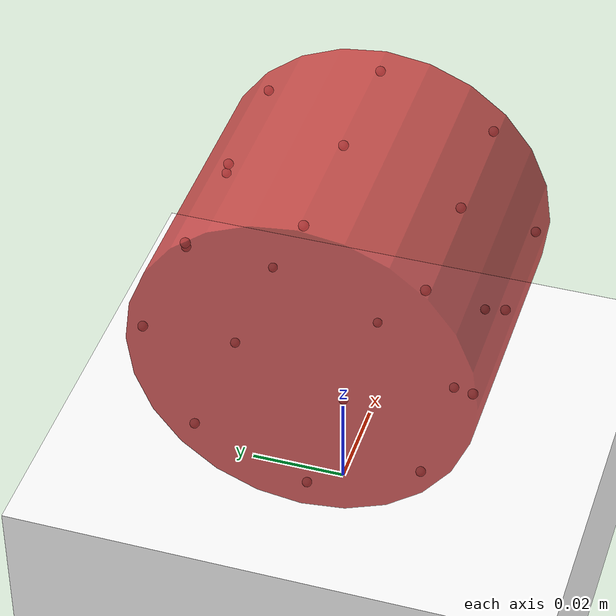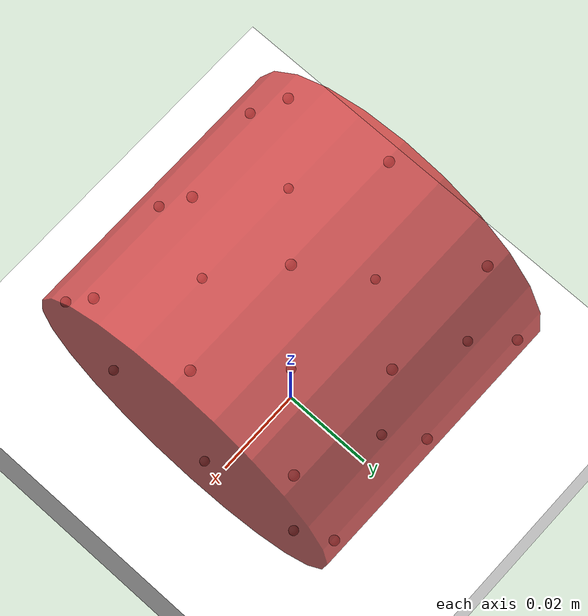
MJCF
<mujoco model="zippy scene">
  <include file="test_magnet_floor_env.xml" />

  <statistic center="0 0 0.2" extent="0.6" />

  <visual>
    <headlight diffuse="0.6 0.6 0.6" ambient="0.3 0.3 0.3" specular="0 0 0" />
    <rgba haze="0.15 0.25 0.35 1" />
    <global azimuth="160" elevation="-20" />
  </visual>

  <asset>
    <texture type="skybox" builtin="gradient" rgb1="0.3 0.5 0.7" rgb2="0 0 0" width="512"
      height="3072" />
    <texture type="2d" name="groundplane" builtin="checker" mark="edge" rgb1="0.2 0.3 0.4"
      rgb2="0.1 0.2 0.3"
      markrgb="0.8 0.8 0.8" width="300" height="300" />
    <material name="groundplane" texture="groundplane" texuniform="true" texrepeat="5 5"
      reflectance="0.2" />
  </asset>

  <worldbody>
    <light pos="0 0 1.5" dir="0 0 -1" directional="true" />
    <geom name="floor" size="0 0 0.001" type="plane" material="groundplane" />
  </worldbody>
</mujoco>

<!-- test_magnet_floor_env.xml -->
<mujoco model="magnet_floor_env">
    <compiler angle="radian"/>

    <option integrator="implicit" cone="elliptic" impratio="10" noslip_iterations="15"/>

    <default class="main">
        <geom condim="6"/>
    </default>

    <visual>
        <global offwidth="1920" offheight="1080"/>
    </visual>

    <worldbody>

        <!-- === Magnetic Floor (finite rectangular plate) === -->
        <!-- Replace infinite plane with box; half-sizes = 0.25 m × 0.25 m × 0.02 m -->
        <body name="floor" pos="0 0 0">
            <geom name="magnetic_floor" type="box" size="0.25 0.25 0.02"
                  rgba="1 1 1 1"
                  friction="1 0.1 0.1"/>
        </body>

        <!-- === Magnet cylinder sitting on floor === -->
        <!-- Axis along X (so it rolls along Y) -->
        <!-- Half-length = 0.029, radius = 0.035 => center at z = 0.25*0.02*2 + 0.035 = 0.055 -->
        <body name="magnet_box" pos="0 0 0.055" zaxis="1 0 0">
            <inertial mass="0.5" pos="0 0 0"
                      diaginertia="0.000148 0.000148 0.000225"/>
            <freejoint/>

            <!-- Main magnet cylinder -->
            <geom name="mag_box" type="cylinder" size="0.035 0.029"
                  rgba="0.8 0.2 0.2 0.8"
                  friction="1 0.005 0.005"/>

            <!-- === Magnetic contact points (2 mm inward offset) === -->
            <!-- radius = 0.033, z = +0.025, 0, -0.025 -->

            <!-- Top ring -->
            <geom name="mag_pt0"  type="sphere" size="0.001" pos="0.033 0 0.025"/>
            <geom name="mag_pt1"  type="sphere" size="0.001" pos="0.0233 0.0233 0.025"/>
            <geom name="mag_pt2"  type="sphere" size="0.001" pos="0 0.033 0.025"/>
            <geom name="mag_pt3"  type="sphere" size="0.001" pos="-0.0233 0.0233 0.025"/>
            <geom name="mag_pt4"  type="sphere" size="0.001" pos="-0.033 0 0.025"/>
            <geom name="mag_pt5"  type="sphere" size="0.001" pos="-0.0233 -0.0233 0.025"/>
            <geom name="mag_pt6"  type="sphere" size="0.001" pos="0 -0.033 0.025"/>
            <geom name="mag_pt7"  type="sphere" size="0.001" pos="0.0233 -0.0233 0.025"/>

            <!-- Middle ring -->
            <geom name="mag_pt8"  type="sphere" size="0.001" pos="0.033 0 0"/>
            <geom name="mag_pt9"  type="sphere" size="0.001" pos="0.0233 0.0233 0"/>
            <geom name="mag_pt10" type="sphere" size="0.001" pos="0 0.033 0"/>
            <geom name="mag_pt11" type="sphere" size="0.001" pos="-0.0233 0.0233 0"/>
            <geom name="mag_pt12" type="sphere" size="0.001" pos="-0.033 0 0"/>
            <geom name="mag_pt13" type="sphere" size="0.001" pos="-0.0233 -0.0233 0"/>
            <geom name="mag_pt14" type="sphere" size="0.001" pos="0 -0.033 0"/>
            <geom name="mag_pt15" type="sphere" size="0.001" pos="0.0233 -0.0233 0"/>

            <!-- Bottom ring -->
            <geom name="mag_pt16" type="sphere" size="0.001" pos="0.033 0 -0.025"/>
            <geom name="mag_pt17" type="sphere" size="0.001" pos="0.0233 0.0233 -0.025"/>
            <geom name="mag_pt18" type="sphere" size="0.001" pos="0 0.033 -0.025"/>
            <geom name="mag_pt19" type="sphere" size="0.001" pos="-0.0233 0.0233 -0.025"/>
            <geom name="mag_pt20" type="sphere" size="0.001" pos="-0.033 0 -0.025"/>
            <geom name="mag_pt21" type="sphere" size="0.001" pos="-0.0233 -0.0233 -0.025"/>
            <geom name="mag_pt22" type="sphere" size="0.001" pos="0 -0.033 -0.025"/>
            <geom name="mag_pt23" type="sphere" size="0.001" pos="0.0233 -0.0233 -0.025"/>
        </body>
    </worldbody>
</mujoco>
